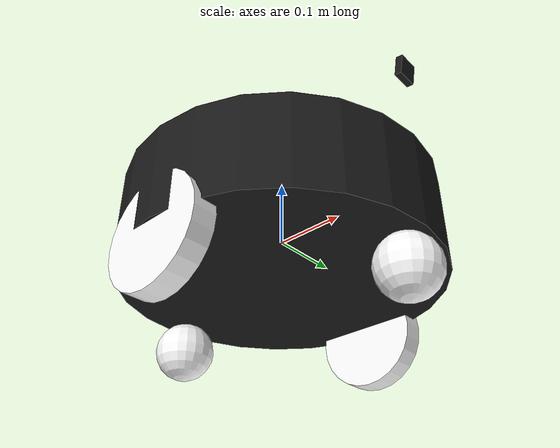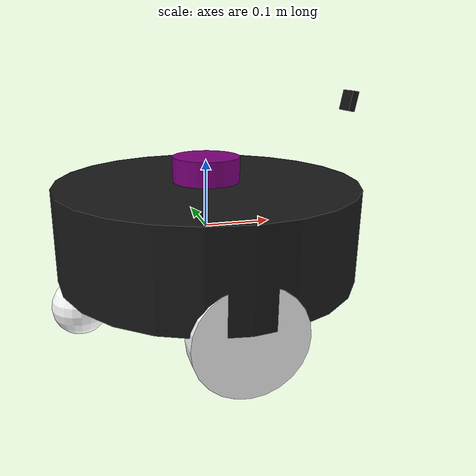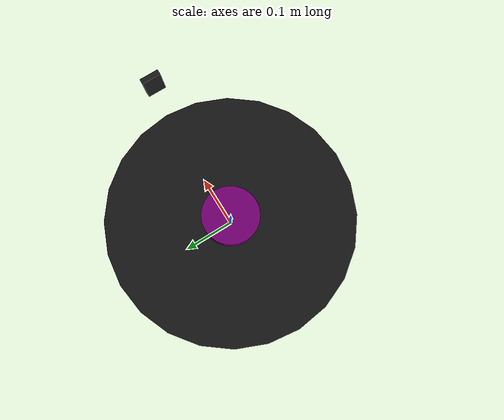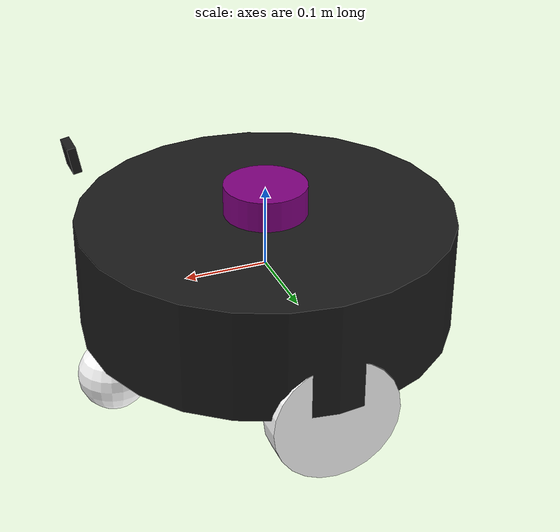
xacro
<?xml version="1.0"?>
<robot xmlns:xacro="http://www.ros.org/wiki/xacro" name="robot">
    <!-- Arguments -->
    <xacro:arg name="use_ros2_control" default="true"/>
    <xacro:arg name="sim_mode" default="false"/>

    <!-- Global Properties (moved from robot_core.xacro) -->
    <xacro:property name="chassis_length" value="0.45"/>
    <xacro:property name="chassis_width" value="0.45"/>
    <xacro:property name="chassis_height" value="0.006"/>
    <xacro:property name="pole_height" value="0.126"/>
    <xacro:property name="chassis_mass" value="1.0"/>
    <xacro:property name="wheel_radius" value="0.0762"/>
    <xacro:property name="wheel_thickness" value="0.03175"/>
    <xacro:property name="wheel_mass" value="0.05"/>
    <xacro:property name="wheel_offset_y" value="0.205"/>
    <xacro:property name="caster_wheel_radius" value="0.035"/>
    <xacro:property name="caster_sphere_radius" value="0.085"/>
    <xacro:property name="caster_wheel_mass" value="0.01"/>

    <!-- Include Macros -->
    <xacro:include filename="inertial_macros.xacro"/>

    <!-- Robot Structure -->
    <xacro:include filename="robot_core.xacro"/>

    <!-- Sensors and Features -->
    <xacro:include filename="lidar.xacro"/>
    <xacro:include filename="camera.xacro"/>

    <!-- Control -->
    <xacro:if value="$(arg use_ros2_control)">
        <xacro:include filename="ros2_control.xacro"/>
    </xacro:if>
    <xacro:unless value="$(arg use_ros2_control)">
        <xacro:include filename="gazebo_control.xacro"/>
    </xacro:unless>
</robot>

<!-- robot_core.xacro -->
<robot xmlns:xacro="http://www.ros.org/wiki/xacro">
    <!-- Wheel Macro -->
    <xacro:macro name="wheel" params="prefix side">
        <joint name="${prefix}_wheel_joint" type="continuous">
            <parent link="base_link"/>
            <child link="${prefix}_wheel"/>
            <origin xyz="0 ${side * wheel_offset_y} ${wheel_radius*(-15/14)}" rpy="${-side * pi/2} 0 0"/>
            <axis xyz="0 0 ${side}"/>
        </joint>
        <link name="${prefix}_wheel">
            <visual>
                <geometry>
                    <cylinder radius="${wheel_radius}" length="${wheel_thickness}"/>
                </geometry>
                <material name="white">
                    <color rgba="1.0 1.0 1.0 1.0"/> <!-- White color for the wheel -->
                </material>
            </visual>
            <collision>
                <geometry>
                    <cylinder radius="${wheel_radius}" length="${wheel_thickness}"/>
                </geometry>
                <material name="white">
                    <color rgba="1.0 1.0 1.0 1.0"/> <!-- White color for the wheel -->
                </material>
            </collision>
            <xacro:inertial_cylinder mass="${wheel_mass}" length="${wheel_thickness}" radius="${wheel_radius}">
                <origin xyz="0 0 0" rpy="0 0 0"/>
            </xacro:inertial_cylinder>
        </link>
        <gazebo reference="${prefix}_wheel">
            <material>Gazebo/Blue</material>
        </gazebo>
    </xacro:macro>

    <!-- Base Footprint -->
    <link name="base_footprint"/>

    <!-- Chassis -->
    <joint name="base_joint" type="fixed">
        <parent link="base_footprint"/>
        <child link="base_link"/>
        <origin xyz="0 0 0"/>
    </joint>
    <link name="base_link">
        <visual>
            <origin xyz="0 0 0"/>
            <geometry>
                <cylinder radius="${chassis_length/2}" length="${chassis_height+pole_height+chassis_height}"/>
            </geometry>
            <material name="black">
                <color rgba="0.1 0.1 0.1 1.0"/>
            </material>
        </visual>
        <collision>
            <origin xyz="0 0 0"/>
            <geometry>
                <cylinder radius="${chassis_length/2}" length="${chassis_height+pole_height+chassis_height}"/>
            </geometry>
            <material name="black">
                <color rgba="0.1 0.1 0.1 1.0"/>
            </material>
        </collision>
        <xacro:inertial_cylinder mass="${chassis_mass}" length="${chassis_height+pole_height+chassis_height}" radius="${chassis_length/2}">
            <origin xyz="0 0 0" rpy="0 0 0"/>
        </xacro:inertial_cylinder>
    </link>
    <gazebo reference="base_link">
        <material>Gazebo/Orange</material>
    </gazebo>

    <!-- Wheels -->
    <xacro:wheel prefix="left" side="1"/>
    <xacro:wheel prefix="right" side="-1"/>

     <!-- Front Caster Wheel -->
    <joint name="front_caster_joint" type="fixed">
        <parent link="base_link"/>
        <child link="front_caster"/>
        <origin xyz="${chassis_length/2 - 0.03} 0 ${-(caster_sphere_radius/2)-((chassis_height+pole_height+chassis_height)/2)}"/>
    </joint>
    <link name="front_caster">
        <visual>
            <geometry>
                <sphere radius="${caster_sphere_radius/2}"/>
            </geometry>
            <material name="white">
                <color rgba="1.0 1.0 1.0 1.0"/>
            </material>
        </visual>
        <collision>
            <geometry>
                <sphere radius="${caster_sphere_radius/2}"/>
            </geometry>
        </collision>
        <xacro:inertial_sphere mass="${caster_wheel_mass}" radius="${caster_sphere_radius/2}">
            <origin xyz="0 0 0" rpy="0 0 0"/>
        </xacro:inertial_sphere>
    </link>
    <gazebo reference="front_caster">
        <material>Gazebo/White</material>
        <mu1 value="0.001"/>
        <mu2 value="0.001"/>
    </gazebo>

    <!-- Rear Caster Wheel -->
    <joint name="rear_caster_joint" type="fixed">
        <parent link="base_link"/>
        <child link="rear_caster"/>
        <origin xyz="${-chassis_length/2 + 0.03} 0 ${-(caster_sphere_radius/2)-((chassis_height+pole_height+chassis_height)/2)}"/>
    </joint>
    <link name="rear_caster">
        <visual>
            <geometry>
                <sphere radius="${caster_sphere_radius/2}"/>
            </geometry>
            <material name="white">
                <color rgba="1.0 1.0 1.0 1.0"/>
            </material>
        </visual>
        <collision>
            <geometry>
                <sphere radius="${caster_sphere_radius/2}"/>
            </geometry>
        </collision>
        <xacro:inertial_sphere mass="${caster_wheel_mass}" radius="${caster_sphere_radius/2}">
            <origin xyz="0 0 0" rpy="0 0 0"/>
        </xacro:inertial_sphere>
    </link>
    <gazebo reference="rear_caster">
        <material>Gazebo/White</material>
        <mu1 value="0.001"/>
        <mu2 value="0.001"/>
    </gazebo>
</robot>

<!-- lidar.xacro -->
<robot xmlns:xacro="http://www.ros.org/wiki/xacro" >
    <joint name="laser_joint" type="fixed">
        <parent link="base_link"/>
        <child link="laser_frame"/>
        <origin xyz="0 0 ${chassis_height/2+pole_height/2+0.04/2}" rpy="0 0 0"/>
    </joint>

    <link name="laser_frame">
        <visual>
            <geometry>
                <cylinder radius="0.05" length="0.04"/>
            </geometry>
            <material name="purple">
                <color rgba="0.5 0.0 0.5 1.0"/>
            </material>
        </visual>
        <collision>
            <geometry>
                <cylinder radius="0.05" length="0.04"/>
            </geometry>
            <material name="purple">
                <color rgba="0.5 0.0 0.5 1.0"/>
            </material>
        </collision>
        <xacro:inertial_cylinder mass="0.1" length="0.04" radius="0.05">
            <origin xyz="0 0 0" rpy="0 0 0"/>
        </xacro:inertial_cylinder>
    </link>

    <gazebo reference="laser_frame">
        <material>Gazebo/Purple</material>
        <sensor name="laser" type="ray">
            <pose> 0 0 0 0 0 0 </pose>
            <visualize>false</visualize>
            <update_rate>10</update_rate>
            <ray>
                <scan>
                    <horizontal>
                        <samples>360</samples>
                        <min_angle>-3.14159</min_angle>
                        <max_angle>3.14159</max_angle>
                        <resolution>1.0</resolution>
                    </horizontal>
                </scan>
                <range>
                    <min>0.3</min>
                    <max>12</max>
                    <resolution>0.01</resolution>
                </range>
                <noise>
                    <type>gaussian</type>
                    <mean>0.0</mean>
                    <stddev>0.01</stddev>
                </noise>
            </ray>
            <plugin name="laser_controller" filename="libgazebo_ros_ray_sensor.so">
                <ros>
                    <namespace>/</namespace>
                    <remapping>~/out:=scan</remapping>
                </ros>
                <output_type>sensor_msgs/LaserScan</output_type>
                <frame_name>laser_frame</frame_name>
            </plugin>
        </sensor>
    </gazebo>
</robot>

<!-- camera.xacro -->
<robot xmlns:xacro="http://www.ros.org/wiki/xacro">
    <joint name="camera_joint" type="fixed">
        <parent link="base_link"/>
        <child link="camera_link"/>
        <origin xyz="${chassis_length/2} 0 0.181" rpy="0 0.18 0"/>
    </joint>
    <link name="camera_link">
        <visual>
            <geometry>
                <box size="0.010 0.03 0.03"/>
            </geometry>
            <material name="black"/>
        </visual>
        <collision>
            <geometry>
                <box size="0.010 0.03 0.03"/>
            </geometry>
        </collision>
        <xacro:inertial_box mass="0.1" x="0.010" y="0.03" z="0.03">
            <origin xyz="0 0 0" rpy="0 0 0"/>
        </xacro:inertial_box>
    </link>
    <joint name="camera_optical_joint" type="fixed">
        <parent link="camera_link"/>
        <child link="camera_link_optical"/>
        <origin xyz="0 0 0" rpy="${-pi/2} 0 ${-pi/2}"/>
    </joint>
    <link name="camera_link_optical"/>
    <gazebo reference="camera_link">
        <material>Gazebo/Black</material>
        <sensor name="camera" type="depth">
            <pose>0 0 0 0 0 0</pose>
            <visualize>true</visualize>
            <update_rate>10</update_rate>
            <camera>
                <horizontal_fov>1.089</horizontal_fov>
                <image>
                    <format>R8G8B8</format>
                    <width>640</width>
                    <height>480</height>
                </image>
                <clip>
                    <near>0.05</near>
                    <far>8.0</far>
                </clip>
            </camera>
            <plugin name="camera_controller" filename="libgazebo_ros_camera.so">
                <frame_name>camera_link_optical</frame_name>
                <min_depth>0.1</min_depth>
                <max_depth>100.0</max_depth>
            </plugin>
        </sensor>
    </gazebo>
</robot>
